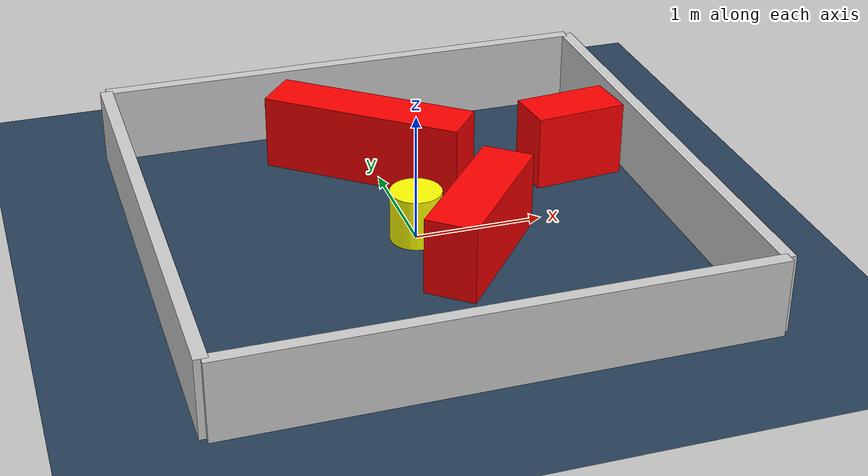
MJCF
<?xml version="1.0" ?>
<mujoco model="generated_environment">
  <option timestep="0.01" integrator="RK4" cone="elliptic"/>
  <default>
    <geom density="1"/>
  </default>
  <asset>
    <texture builtin="gradient" height="3072" rgb1="0.3 0.5 0.7" rgb2="0 0 0" type="skybox" width="512"/>
    <texture builtin="checker" height="300" mark="edge" markrgb="0.8 0.8 0.8" name="groundplane" rgb1="0.2 0.3 0.4" rgb2="0.1 0.2 0.3" type="2d" width="300"/>
    <material name="groundplane" reflectance="0.2" texrepeat="5 5" texture="groundplane" texuniform="true"/>
    <material name="robot" rgba="0.0 1.0 0.0 1"/>
  </asset>
  <worldbody>
    <light dir="0 0 -1" directional="true" pos="0 0 1.5"/>
    <geom condim="4" friction="1.0 0.005 0.001" material="groundplane" name="floor" size="0 0 0.05" type="plane"/>
    <body name="walls">
      <geom name="wall_1" condim="4" pos="-2.0 0.0 0.3" rgba="0.800000011920929 0.800000011920929 0.800000011920929 1.0" size="0.05 2.0 0.3" type="box"/>
      <geom name="wall_2" condim="4" pos="2.0 0.0 0.3" rgba="0.800000011920929 0.800000011920929 0.800000011920929 1.0" size="0.05 2.0 0.3" type="box"/>
      <geom name="wall_3" condim="4" pos="0.0 -2.0 0.3" rgba="0.800000011920929 0.800000011920929 0.800000011920929 1.0" size="2.0 0.05 0.3" type="box"/>
      <geom name="wall_4" condim="4" pos="0.0 2.0 0.3" rgba="0.800000011920929 0.800000011920929 0.800000011920929 1.0" size="2.0 0.05 0.3" type="box"/>
    </body>
    <body name="robot">
      <joint name="joint_x" type="slide" pos="0 0 0" axis="1 0 0"/>
      <joint name="joint_y" type="slide" pos="0 0 0" axis="0 1 0"/>
      <geom name="robot" type="sphere" pos="0.3 0.0 0.2" size="0.05" mass="5." friction="1.0 0.005 0.0001" condim="4" rgba="0.5 0.5 0.5 1.0"/>
      <site name="sensor_ball"/>
    </body>
    <body name="obstacle_movable_1">
      <geom name="obstacle_movable_1" condim="4" pos="0.0 0.0 0.2" euler="0 0 0.0" friction="1.0 0.005 0.001" rgba="1.0 1.0 0.0 1.0" size="0.2 0.2 0.0" type="cylinder" mass="0.1"/>
      <joint type="free"/>
    </body>
    <body name="obstacle_2_static">
      <geom name="obstacle_2_static" condim="4" pos="-0.04039616055707018 1.1241309926626857 0.3" euler="0 0 140.94893838203944" friction="1.0 0.005 0.001" rgba="1 0 0 1" size="0.8228394110786084 0.2 0.3" type="box"/>
    </body>
    <body name="obstacle_3_static">
      <geom name="obstacle_3_static" condim="4" pos="0.3570758212220133 -0.42739647371441425 0.3" euler="0 0 230.52102075609235" friction="1.0 0.005 0.001" rgba="1 0 0 1" size="0.615492380661878 0.2 0.3" type="box"/>
    </body>
    <body name="obstacle_4_static">
      <geom name="obstacle_4_static" condim="4" pos="1.5092167290895475 0.6815001933612861 0.3" euler="0 0 185.54719103143643" friction="1.0 0.005 0.001" rgba="1 0 0 1" size="0.36925442619083154 0.2 0.3" type="box"/>
    </body>
  </worldbody>
  <actuator>
    <motor name="actuator_x" joint="joint_x" gear="1" ctrlrange="-1 1"/>
    <motor name="actuator_y" joint="joint_y" gear="1" ctrlrange="-1 1"/>
  </actuator>
</mujoco>
